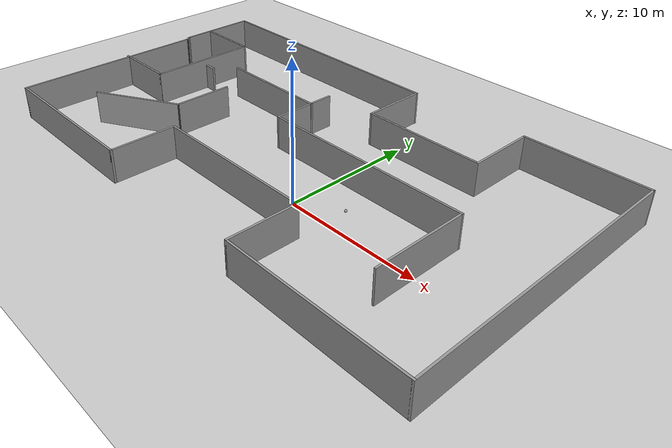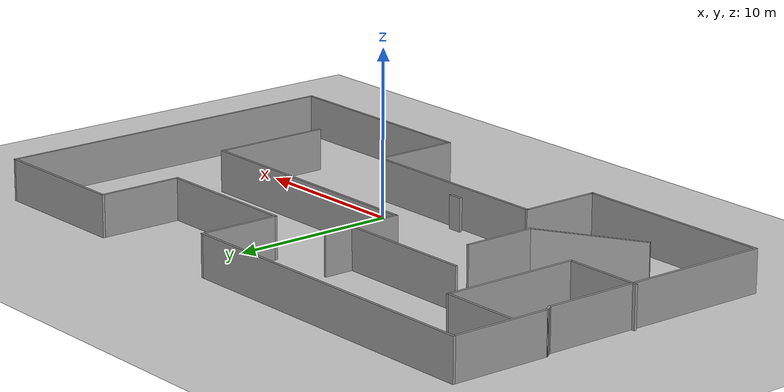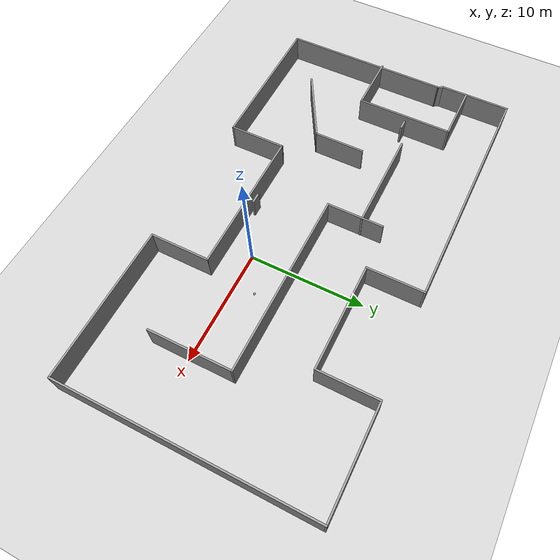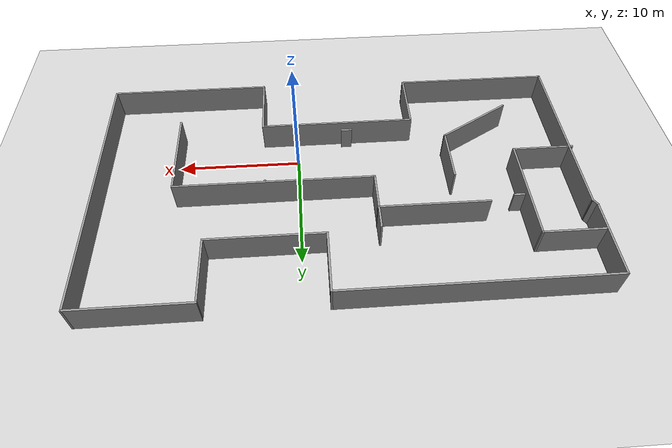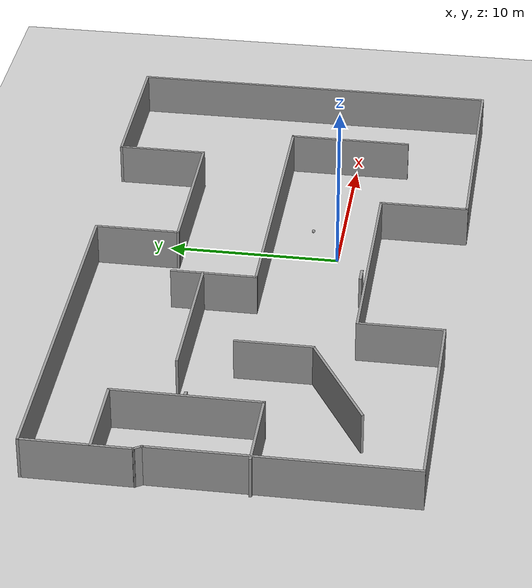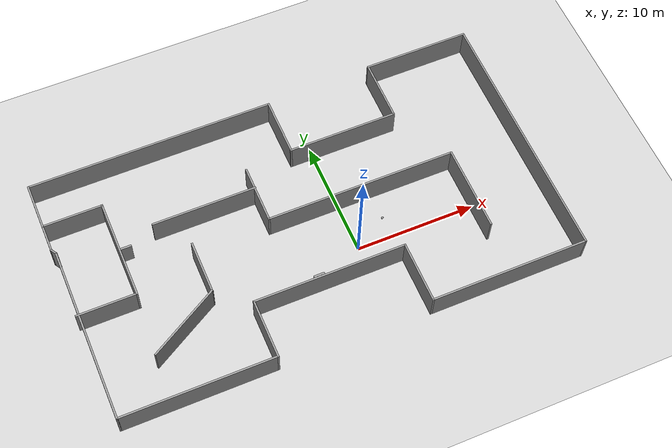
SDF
<sdf version="1.6">
 <world name="default">
  <light name="sun" type="directional">
   <pose>0 0 10 0 -0 0</pose>
   <diffuse>0.8 0.8 0.8 1</diffuse>
   <specular>0.2 0.2 0.2 1</specular>
   <attenuation>
    <range>1000</range>
    <constant>0.9</constant>
    <linear>0.01</linear>
    <quadratic>0.001</quadratic>
   </attenuation>
   <direction>-0.5 0.1 -0.9</direction>
  </light>
  <model name="ground_plane">
   <static>1</static>
   <link name="link">
    <collision name="collision">
     <geometry><plane><normal>0 0 1</normal><size>100 100</size></plane></geometry>
     <surface>
      <contact><collide_bitmask>65535</collide_bitmask></contact>
      <friction><ode><mu>100</mu><mu2>50</mu2></ode></friction>
     </surface>
    </collision>
    <visual name="visual">
     <cast_shadows>0</cast_shadows>
     <geometry><plane><normal>0 0 1</normal><size>100 100</size></plane></geometry>
     <material>
      <script><uri>file://media/materials/scripts/gazebo.material</uri><name>Gazebo/Grey</name></script>
     </material>
    </visual>
   </link>
  </model>
  <gravity>0 0 -9.8</gravity>
  <magnetic_field>6e-06 2.3e-05 -4.2e-05</magnetic_field>
  <atmosphere type="adiabatic"/>
  <physics name="default_physics" default="0" type="ode">
   <max_step_size>0.001</max_step_size>
   <real_time_factor>1</real_time_factor>
   <real_time_update_rate>1000</real_time_update_rate>
  </physics>
  <scene><ambient>0.4 0.4 0.4 1</ambient><background>0.7 0.7 0.7 1</background><shadows>1</shadows></scene>
  <spherical_coordinates>
   <surface_model>EARTH_WGS84</surface_model>
   <latitude_deg>0</latitude_deg>
   <longitude_deg>0</longitude_deg>
   <elevation>0</elevation>
   <heading_deg>0</heading_deg>
  </spherical_coordinates>
  <model name="f1">
   <pose>-3.32007 3.47916 0 0 -0 0</pose>
   <link name="Door_0">
    <collision name="Door_0_Collision">
     <geometry><box><size>0.9 0.17 2</size></box></geometry>
     <pose>0 0 1 0 -0 0</pose>
    </collision>
    <visual name="Door_0_Visual">
     <pose>0 0 1 0 -0 0</pose>
     <geometry><box><size>0.9 0.17 2</size></box></geometry>
     <material>
      <script><uri>file://media/materials/scripts/gazebo.material</uri><name>Gazebo/Grey</name></script>
     </material>
    </visual>
    <pose>-0.867054 -5.30355 0 0 -0 0</pose>
   </link>
   <link name="Door_2">
    <collision name="Door_2_Collision">
     <geometry><box><size>0.9 0.17 2</size></box></geometry>
     <pose>0 0 1 0 -0 0</pose>
    </collision>
    <visual name="Door_2_Visual">
     <pose>0 0 1 0 -0 0</pose>
     <geometry><box><size>0.9 0.17 2</size></box></geometry>
     <material>
      <script><uri>file://media/materials/scripts/gazebo.material</uri><name>Gazebo/Grey</name></script>
     </material>
    </visual>
    <pose>-13.815 2.71566 0 0 -0 0</pose>
   </link>
   <link name="Wall_1">
    <collision name="Wall_1_Collision">
     <geometry><box><size>14.75 0.15 2.5</size></box></geometry>
     <pose>0 0 1.25 0 -0 0</pose>
    </collision>
    <visual name="Wall_1_Visual">
     <pose>0 0 1.25 0 -0 0</pose>
     <geometry><box><size>14.75 0.15 2.5</size></box></geometry>
     <material>
      <script><uri>file://media/materials/scripts/gazebo.material</uri><name>Gazebo/Grey</name></script>
      <ambient>1 1 1 1</ambient>
     </material>
     <meta><layer>0</layer></meta>
    </visual>
    <pose>-19.0108 -3.25 0 0 0 -1.5708</pose>
   </link>
   <link name="Wall_10">
    <collision name="Wall_10_Collision">
     <geometry><box><size>9.25 0.15 2.5</size></box></geometry>
     <pose>0 0 1.25 0 -0 0</pose>
    </collision>
    <visual name="Wall_10_Visual">
     <pose>0 0 1.25 0 -0 0</pose>
     <geometry><box><size>9.25 0.15 2.5</size></box></geometry>
     <material>
      <script><uri>file://media/materials/scripts/gazebo.material</uri><name>Gazebo/Grey</name></script>
      <ambient>1 1 1 1</ambient>
     </material>
     <meta><layer>0</layer></meta>
    </visual>
    <pose>5.88917 5.7 0 0 -0 3.14159</pose>
   </link>
   <link name="Wall_11">
    <collision name="Wall_11_Collision">
     <geometry><box><size>5 0.15 2.5</size></box></geometry>
     <pose>0 0 1.25 0 -0 0</pose>
    </collision>
    <visual name="Wall_11_Visual">
     <pose>0 0 1.25 0 -0 0</pose>
     <geometry><box><size>5 0.15 2.5</size></box></geometry>
     <material>
      <script><uri>file://media/materials/scripts/gazebo.material</uri><name>Gazebo/Grey</name></script>
      <ambient>1 1 1 1</ambient>
     </material>
     <meta><layer>0</layer></meta>
    </visual>
    <pose>1.33917 8.125 0 0 -0 1.5708</pose>
   </link>
   <link name="Wall_12">
    <collision name="Wall_12_Collision">
     <geometry><box><size>20.75 0.15 2.5</size></box></geometry>
     <pose>0 0 1.25 0 -0 0</pose>
    </collision>
    <visual name="Wall_12_Visual">
     <pose>0 0 1.25 0 -0 0</pose>
     <geometry><box><size>20.75 0.15 2.5</size></box></geometry>
     <material>
      <script><uri>file://media/materials/scripts/gazebo.material</uri><name>Gazebo/Grey</name></script>
      <ambient>1 1 1 1</ambient>
     </material>
     <meta><layer>0</layer></meta>
    </visual>
    <pose>-8.96083 10.55 0 0 -0 3.14159</pose>
   </link>
   <link name="Wall_13">
    <collision name="Wall_13_Collision">
     <geometry><box><size>6.25 0.15 2.5</size></box></geometry>
     <pose>0 0 1.25 0 -0 0</pose>
    </collision>
    <visual name="Wall_13_Visual">
     <pose>0 0 1.25 0 -0 0</pose>
     <geometry><box><size>6.25 0.15 2.5</size></box></geometry>
     <material>
      <script><uri>file://media/materials/scripts/gazebo.material</uri><name>Gazebo/Grey</name></script>
      <ambient>1 1 1 1</ambient>
     </material>
     <meta><layer>0</layer></meta>
    </visual>
    <pose>-19.2608 7.5 0 0 0 -1.5708</pose>
   </link>
   <link name="Wall_17">
    <collision name="Wall_17_Collision">
     <geometry><box><size>0.621699 0.15 2.5</size></box></geometry>
     <pose>0 0 1.25 0 -0 0</pose>
    </collision>
    <visual name="Wall_17_Visual">
     <pose>0 0 1.25 0 -0 0</pose>
     <geometry><box><size>0.621699 0.15 2.5</size></box></geometry>
     <material>
      <script><uri>file://media/materials/scripts/gazebo.material</uri><name>Gazebo/Grey</name></script>
      <ambient>1 1 1 1</ambient>
     </material>
     <meta><layer>0</layer></meta>
    </visual>
    <pose>-19.1358 4.25 0 0 0 -1.0122</pose>
   </link>
   <link name="Wall_19">
    <collision name="Wall_19_Collision">
     <geometry><box><size>5 0.15 2.5</size></box></geometry>
     <pose>0 0 1.25 0 -0 0</pose>
    </collision>
    <visual name="Wall_19_Visual">
     <pose>0 0 1.25 0 -0 0</pose>
     <geometry><box><size>5 0.15 2.5</size></box></geometry>
     <material>
      <script><uri>file://media/materials/scripts/gazebo.material</uri><name>Gazebo/Grey</name></script>
      <ambient>1 1 1 1</ambient>
     </material>
     <meta><layer>0</layer></meta>
    </visual>
    <pose>-16.7963 -1.63771 0 0 -0 0</pose>
   </link>
   <link name="Wall_2">
    <collision name="Wall_2_Collision">
     <geometry><box><size>12.75 0.15 2.5</size></box></geometry>
     <pose>0 0 1.25 0 -0 0</pose>
    </collision>
    <visual name="Wall_2_Visual">
     <pose>0 0 1.25 0 -0 0</pose>
     <geometry><box><size>12.75 0.15 2.5</size></box></geometry>
     <material>
      <script><uri>file://media/materials/scripts/gazebo.material</uri><name>Gazebo/Grey</name></script>
      <ambient>1 1 1 1</ambient>
     </material>
     <meta><layer>0</layer></meta>
    </visual>
    <pose>-12.7108 -10.55 0 0 -0 0</pose>
   </link>
   <link name="Wall_20">
    <collision name="Wall_20_Collision">
     <geometry><box><size>8.5 0.15 2.5</size></box></geometry>
     <pose>0 0 1.25 0 -0 0</pose>
    </collision>
    <visual name="Wall_20_Visual">
     <pose>0 0 1.25 0 -0 0</pose>
     <geometry><box><size>8.5 0.15 2.5</size></box></geometry>
     <material>
      <script><uri>file://media/materials/scripts/gazebo.material</uri><name>Gazebo/Grey</name></script>
      <ambient>1 1 1 1</ambient>
     </material>
     <meta><layer>0</layer></meta>
    </visual>
    <pose>-14.3713 2.53729 0 0 -0 1.5708</pose>
   </link>
   <link name="Wall_21">
    <collision name="Wall_21_Collision">
     <geometry><box><size>5 0.15 2.5</size></box></geometry>
     <pose>0 0 1.25 0 -0 0</pose>
    </collision>
    <visual name="Wall_21_Visual">
     <pose>0 0 1.25 0 -0 0</pose>
     <geometry><box><size>5 0.15 2.5</size></box></geometry>
     <material>
      <script><uri>file://media/materials/scripts/gazebo.material</uri><name>Gazebo/Grey</name></script>
      <ambient>1 1 1 1</ambient>
     </material>
     <meta><layer>0</layer></meta>
    </visual>
    <pose>-16.7963 6.71229 0 0 -0 3.14159</pose>
   </link>
   <link name="Wall_23">
    <collision name="Wall_23_Collision">
     <geometry><box><size>4.5 0.15 2.5</size></box></geometry>
     <pose>0 0 1.25 0 -0 0</pose>
    </collision>
    <visual name="Wall_23_Visual">
     <pose>0 0 1.25 0 -0 0</pose>
     <geometry><box><size>4.5 0.15 2.5</size></box></geometry>
     <material>
      <script><uri>file://media/materials/scripts/gazebo.material</uri><name>Gazebo/Grey</name></script>
      <ambient>1 1 1 1</ambient>
     </material>
     <meta><layer>0</layer></meta>
    </visual>
    <pose>-9.01647 -1.42609 0 0 0 -1.5708</pose>
   </link>
   <link name="Wall_24">
    <collision name="Wall_24_Collision">
     <geometry><box><size>6.75 0.15 2.5</size></box></geometry>
     <pose>0 0 1.25 0 -0 0</pose>
    </collision>
    <visual name="Wall_24_Visual">
     <pose>0 0 1.25 0 -0 0</pose>
     <geometry><box><size>6.75 0.15 2.5</size></box></geometry>
     <material>
      <script><uri>file://media/materials/scripts/gazebo.material</uri><name>Gazebo/Grey</name></script>
      <ambient>1 1 1 1</ambient>
     </material>
     <meta><layer>0</layer></meta>
    </visual>
    <pose>-11.8744 -5.25109 0 0 0 -2.61799</pose>
   </link>
   <link name="Wall_26">
    <collision name="Wall_26_Collision">
     <geometry><box><size>5 0.15 2.5</size></box></geometry>
     <pose>0 0 1.25 0 -0 0</pose>
    </collision>
    <visual name="Wall_26_Visual">
     <pose>0 0 1.25 0 -0 0</pose>
     <geometry><box><size>5 0.15 2.5</size></box></geometry>
     <material>
      <script><uri>file://media/materials/scripts/gazebo.material</uri><name>Gazebo/Grey</name></script>
      <ambient>1 1 1 1</ambient>
     </material>
     <meta><layer>0</layer></meta>
    </visual>
    <pose>-2.67957 2.93256 0 0 0 -1.5708</pose>
   </link>
   <link name="Wall_27">
    <collision name="Wall_27_Collision">
     <geometry><box><size>16 0.15 2.5</size></box></geometry>
     <pose>0 0 1.25 0 -0 0</pose>
    </collision>
    <visual name="Wall_27_Visual">
     <pose>0 0 1.25 0 -0 0</pose>
     <geometry><box><size>16 0.15 2.5</size></box></geometry>
     <material>
      <script><uri>file://media/materials/scripts/gazebo.material</uri><name>Gazebo/Grey</name></script>
      <ambient>1 1 1 1</ambient>
     </material>
     <meta><layer>0</layer></meta>
    </visual>
    <pose>5.24543 0.507564 0 0 -0 0</pose>
   </link>
   <link name="Wall_28">
    <collision name="Wall_28_Collision">
     <geometry><box><size>7.25 0.15 2.5</size></box></geometry>
     <pose>0 0 1.25 0 -0 0</pose>
    </collision>
    <visual name="Wall_28_Visual">
     <pose>0 0 1.25 0 -0 0</pose>
     <geometry><box><size>7.25 0.15 2.5</size></box></geometry>
     <material>
      <script><uri>file://media/materials/scripts/gazebo.material</uri><name>Gazebo/Grey</name></script>
      <ambient>1 1 1 1</ambient>
     </material>
     <meta><layer>0</layer></meta>
    </visual>
    <pose>13.1704 -3.04244 0 0 0 -1.5708</pose>
   </link>
   <link name="Wall_3">
    <collision name="Wall_3_Collision">
     <geometry><box><size>5 0.15 2.5</size></box></geometry>
     <pose>0 0 1.25 0 -0 0</pose>
    </collision>
    <visual name="Wall_3_Visual">
     <pose>0 0 1.25 0 -0 0</pose>
     <geometry><box><size>5 0.15 2.5</size></box></geometry>
     <material>
      <script><uri>file://media/materials/scripts/gazebo.material</uri><name>Gazebo/Grey</name></script>
      <ambient>1 1 1 1</ambient>
     </material>
     <meta><layer>0</layer></meta>
    </visual>
    <pose>-6.41083 -8.125 0 0 -0 1.5708</pose>
   </link>
   <link name="Wall_30">
    <collision name="Wall_30_Collision">
     <geometry><box><size>8.75 0.15 2.5</size></box></geometry>
     <pose>0 0 1.25 0 -0 0</pose>
    </collision>
    <visual name="Wall_30_Visual">
     <pose>0 0 1.25 0 -0 0</pose>
     <geometry><box><size>8.75 0.15 2.5</size></box></geometry>
     <material>
      <script><uri>file://media/materials/scripts/gazebo.material</uri><name>Gazebo/Grey</name></script>
      <ambient>1 1 1 1</ambient>
     </material>
     <meta><layer>0</layer></meta>
    </visual>
    <pose>-6.94727 3.56744 0 0 -0 3.14159</pose>
   </link>
   <link name="Wall_4">
    <collision name="Wall_4_Collision">
     <geometry><box><size>12.75 0.15 2.5</size></box></geometry>
     <pose>0 0 1.25 0 -0 0</pose>
    </collision>
    <visual name="Wall_4_Visual">
     <pose>0 0 1.25 0 -0 0</pose>
     <geometry><box><size>12.75 0.15 2.5</size></box></geometry>
     <material>
      <script><uri>file://media/materials/scripts/gazebo.material</uri><name>Gazebo/Grey</name></script>
      <ambient>1 1 1 1</ambient>
     </material>
     <meta><layer>0</layer></meta>
    </visual>
    <pose>-0.110826 -5.7 0 0 -0 0</pose>
   </link>
   <link name="Wall_5">
    <collision name="Wall_5_Collision">
     <geometry><box><size>5.25 0.15 2.5</size></box></geometry>
     <pose>0 0 1.25 0 -0 0</pose>
    </collision>
    <visual name="Wall_5_Visual">
     <pose>0 0 1.25 0 -0 0</pose>
     <geometry><box><size>5.25 0.15 2.5</size></box></geometry>
     <material>
      <script><uri>file://media/materials/scripts/gazebo.material</uri><name>Gazebo/Grey</name></script>
      <ambient>1 1 1 1</ambient>
     </material>
     <meta><layer>0</layer></meta>
    </visual>
    <pose>6.18917 -8.25 0 0 0 -1.5708</pose>
   </link>
   <link name="Wall_6">
    <collision name="Wall_6_Collision">
     <geometry><box><size>13.25 0.15 2.5</size></box></geometry>
     <pose>0 0 1.25 0 -0 0</pose>
    </collision>
    <visual name="Wall_6_Visual">
     <pose>0 0 1.25 0 -0 0</pose>
     <geometry><box><size>13.25 0.15 2.5</size></box></geometry>
     <material>
      <script><uri>file://media/materials/scripts/gazebo.material</uri><name>Gazebo/Grey</name></script>
      <ambient>1 1 1 1</ambient>
     </material>
     <meta><layer>0</layer></meta>
    </visual>
    <pose>12.7392 -10.8 0 0 -0 0</pose>
   </link>
   <link name="Wall_7">
    <collision name="Wall_7_Collision">
     <geometry><box><size>21.75 0.15 2.5</size></box></geometry>
     <pose>0 0 1.25 0 -0 0</pose>
    </collision>
    <visual name="Wall_7_Visual">
     <pose>0 0 1.25 0 -0 0</pose>
     <geometry><box><size>21.75 0.15 2.5</size></box></geometry>
     <material>
      <script><uri>file://media/materials/scripts/gazebo.material</uri><name>Gazebo/Grey</name></script>
      <ambient>1 1 1 1</ambient>
     </material>
     <meta><layer>0</layer></meta>
    </visual>
    <pose>19.2892 0 0 0 -0 1.5708</pose>
   </link>
   <link name="Wall_8">
    <collision name="Wall_8_Collision">
     <geometry><box><size>9 0.15 2.5</size></box></geometry>
     <pose>0 0 1.25 0 -0 0</pose>
    </collision>
    <visual name="Wall_8_Visual">
     <pose>0 0 1.25 0 -0 0</pose>
     <geometry><box><size>9 0.15 2.5</size></box></geometry>
     <material>
      <script><uri>file://media/materials/scripts/gazebo.material</uri><name>Gazebo/Grey</name></script>
      <ambient>1 1 1 1</ambient>
     </material>
     <meta><layer>0</layer></meta>
    </visual>
    <pose>14.8642 10.8 0 0 -0 3.14159</pose>
   </link>
   <link name="Wall_9">
    <collision name="Wall_9_Collision">
     <geometry><box><size>5.25 0.15 2.5</size></box></geometry>
     <pose>0 0 1.25 0 -0 0</pose>
    </collision>
    <visual name="Wall_9_Visual">
     <pose>0 0 1.25 0 -0 0</pose>
     <geometry><box><size>5.25 0.15 2.5</size></box></geometry>
     <material>
      <script><uri>file://media/materials/scripts/gazebo.material</uri><name>Gazebo/Grey</name></script>
      <ambient>1 1 1 1</ambient>
     </material>
     <meta><layer>0</layer></meta>
    </visual>
    <pose>10.4392 8.25 0 0 0 -1.5708</pose>
   </link>
   <static>1</static>
  </model>
  <model name="my_ball">
   <link name="link_0">
    <inertial>
     <mass>1</mass>
     <inertia><ixx>0.1</ixx><ixy>0</ixy><ixz>0</ixz><iyy>0.1</iyy><iyz>0</iyz><izz>0.1</izz></inertia>
    </inertial>
    <visual name="visual">
     <geometry><sphere><radius>0.1</radius></sphere></geometry>
     <material>
      <lighting>1</lighting>
      <script><uri>file://media/materials/scripts/gazebo.material</uri><name>Gazebo/Grey</name></script>
      <shader type="pixel"><normal_map>__default__</normal_map></shader>
      <ambient>1 1 1 1</ambient>
      <diffuse>1 1 1 1</diffuse>
      <specular>1 1 1 1</specular>
      <emissive>1 1 1 1</emissive>
     </material>
    </visual>
    <collision name="collision">
     <geometry><sphere><radius>0.1</radius></sphere></geometry>
     <surface>
      <friction>
       <ode><mu>1</mu><mu2>1</mu2><fdir1>0 0 0</fdir1><slip1>0</slip1><slip2>0</slip2></ode>
       <torsional>
        <coefficient>1</coefficient>
        <patch_radius>0</patch_radius>
        <surface_radius>0</surface_radius>
        <use_patch_radius>1</use_patch_radius>
        <ode><slip>0</slip></ode>
       </torsional>
      </friction>
      <bounce><restitution_coefficient>0</restitution_coefficient><threshold>1e+06</threshold></bounce>
      <contact>
       <collide_without_contact>0</collide_without_contact>
       <collide_without_contact_bitmask>1</collide_without_contact_bitmask>
       <collide_bitmask>1</collide_bitmask>
       <ode>
        <soft_cfm>0</soft_cfm>
        <soft_erp>0.2</soft_erp>
        <kp>1e+13</kp>
        <kd>1</kd>
        <max_vel>0.01</max_vel>
        <min_depth>0</min_depth>
       </ode>
       <bullet>
        <split_impulse>1</split_impulse>
        <split_impulse_penetration_threshold>-0.01</split_impulse_penetration_threshold>
        <soft_cfm>0</soft_cfm>
        <soft_erp>0.2</soft_erp>
        <kp>1e+13</kp>
        <kd>1</kd>
       </bullet>
      </contact>
     </surface>
    </collision>
   </link>
   <static>0</static>
   <pose>2.89391 1.80333 0.1 0 -0 0</pose>
  </model>
 </world>
</sdf>
